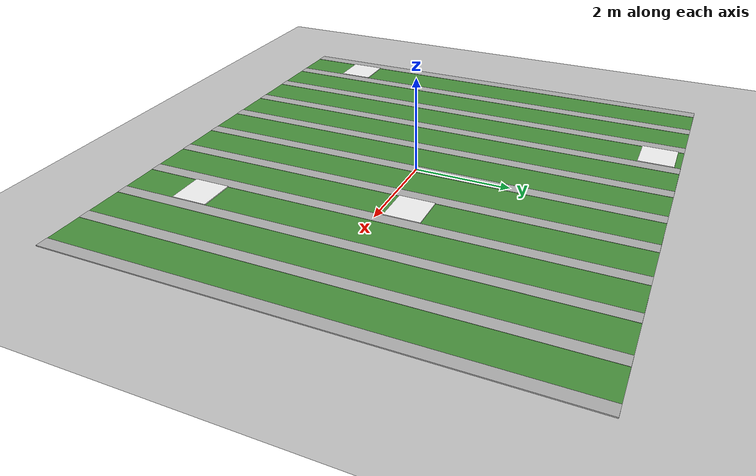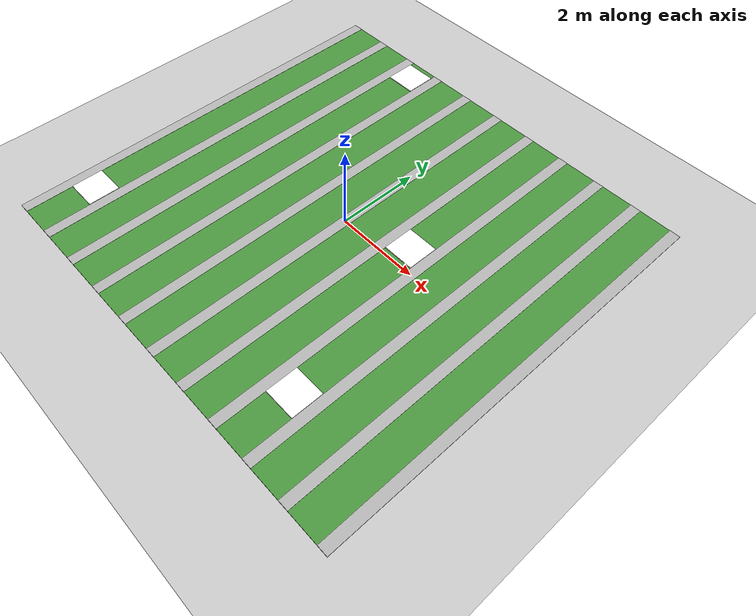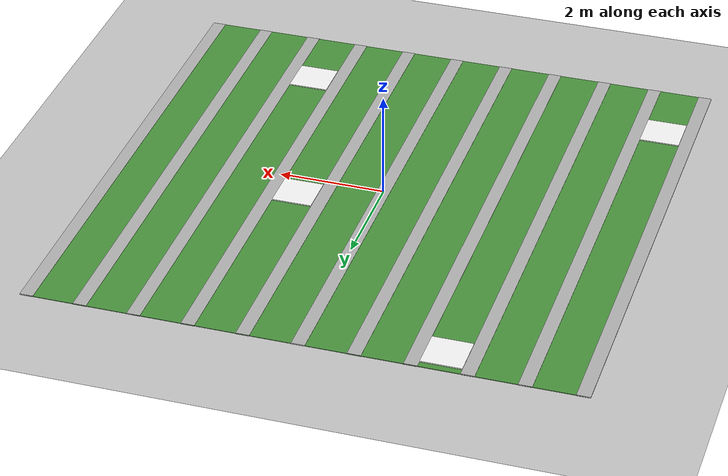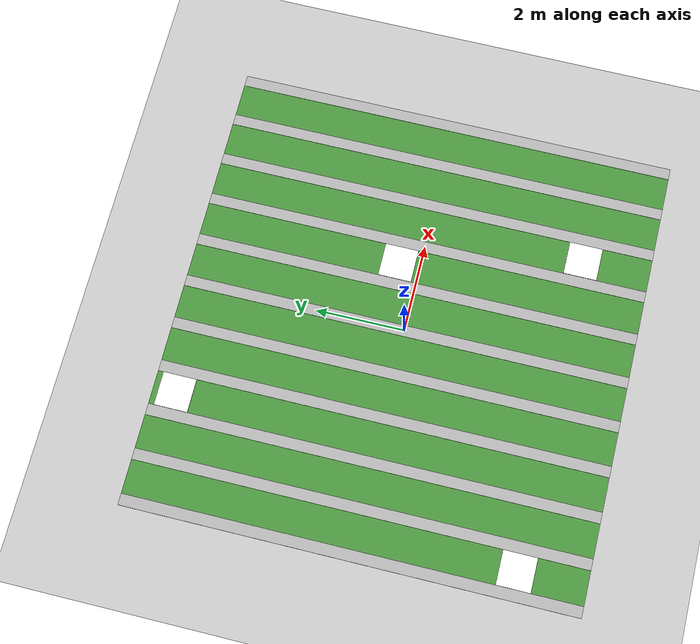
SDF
<sdf version="1.5">
 <world name="default">
  <include><uri>model://sun</uri></include>
  <include><uri>model://ground_plane</uri></include>
  <model name="target1">
   <static>true</static>
   <pose>1.5 0.5 0 0 0 0</pose>
   <link name="link">
    <visual name="visual">
     <cast_shadows>false</cast_shadows>
     <geometry><box><size>0.75 0.75 0.05</size></box></geometry>
     <material><emissive>1 1 1 1</emissive><diffuse>1 1 1 1</diffuse></material>
     <plugin name="visualChange1" filename="libChangeTargetVisual.so">
      <contains_topic>target1_contains/contain</contains_topic>
     </plugin>
    </visual>
   </link>
  </model>
  <model name="target2">
   <static>true</static>
   <pose>-2.5 4.5 0 0 0 0</pose>
   <link name="link">
    <visual name="visual">
     <cast_shadows>false</cast_shadows>
     <geometry><box><size>0.75 0.75 0.05</size></box></geometry>
     <material><emissive>1 1 1 1</emissive><diffuse>1 1 1 1</diffuse></material>
     <plugin name="visualChange2" filename="libChangeTargetVisual.so">
      <contains_topic>target2_contains/contain</contains_topic>
     </plugin>
    </visual>
   </link>
  </model>
  <model name="target3">
   <static>true</static>
   <pose>2.5 -3.5 0 0 0 0</pose>
   <link name="link">
    <visual name="visual">
     <cast_shadows>false</cast_shadows>
     <geometry><box><size>0.75 0.75 0.05</size></box></geometry>
     <material><emissive>1 1 1 1</emissive><diffuse>1 1 1 1</diffuse></material>
     <plugin name="visualChange3" filename="libChangeTargetVisual.so">
      <contains_topic>target3_contains/contain</contains_topic>
     </plugin>
    </visual>
   </link>
  </model>
  <model name="target4">
   <static>true</static>
   <pose>-4.5 -3.5 0 0 0 0</pose>
   <link name="link">
    <visual name="visual">
     <cast_shadows>false</cast_shadows>
     <geometry><box><size>0.75 0.75 0.05</size></box></geometry>
     <material><emissive>1 1 1 1</emissive><diffuse>1 1 1 1</diffuse></material>
     <plugin name="visualChange4" filename="libChangeTargetVisual.so">
      <contains_topic>target4_contains/contain</contains_topic>
     </plugin>
    </visual>
   </link>
  </model>
  <physics name="default_physics" default="0" type="ode">
   <gravity>0 0 -9.8066</gravity>
   <ode>
    <solver>
     <type>quick</type>
     <iters>10</iters>
     <sor>1.3</sor>
     <use_dynamic_moi_rescaling>0</use_dynamic_moi_rescaling>
    </solver>
    <constraints>
     <cfm>0</cfm>
     <erp>0.2</erp>
     <contact_max_correcting_vel>100</contact_max_correcting_vel>
     <contact_surface_layer>0.001</contact_surface_layer>
    </constraints>
   </ode>
   <max_step_size>0.004</max_step_size>
   <real_time_factor>1</real_time_factor>
   <real_time_update_rate>250</real_time_update_rate>
   <magnetic_field>6.0e-6 2.3e-5 -4.2e-5</magnetic_field>
  </physics>
  <plugin name="target1Plugin" filename="libContainPlugin.so">
   <enabled>true</enabled>
   <entity>iris::base_link</entity>
   <namespace>target1_contains</namespace>
   <pose>1.5 0.5 0 0 0 0</pose>
   <geometry><box><size>1 1 10</size></box></geometry>
  </plugin>
  <plugin name="target2Plugin" filename="libContainPlugin.so">
   <enabled>true</enabled>
   <entity>iris::base_link</entity>
   <namespace>target2_contains</namespace>
   <pose>-2.5 4.5 0 0 0 0</pose>
   <geometry><box><size>1 1 10</size></box></geometry>
  </plugin>
  <plugin name="target3Plugin" filename="libContainPlugin.so">
   <enabled>true</enabled>
   <entity>iris::base_link</entity>
   <namespace>target3_contains</namespace>
   <pose>2.5 -3.5 0 0 0 0</pose>
   <geometry><box><size>1 1 10</size></box></geometry>
  </plugin>
  <plugin name="target4Plugin" filename="libContainPlugin.so">
   <enabled>true</enabled>
   <entity>iris::base_link</entity>
   <namespace>target4_contains</namespace>
   <pose>-4.5 -3.5 0 0 0 0</pose>
   <geometry><box><size>1 1 10</size></box></geometry>
  </plugin>
  <model name="grass">
   <static>true</static>
   <link name="link">
    <visual name="visual">
     <geometry><box><size>10 10 0.01</size></box></geometry>
     <material>
      <script><uri>file://media/materials/scripts/gazebo.material</uri><name>Gazebo/Grass</name></script>
     </material>
    </visual>
   </link>
  </model>
  <model name="road_y1">
   <static>1</static>
   <pose>0 0 0 0 0 1.5708</pose>
   <link name="link">
    <visual name="visual">
     <cast_shadows>0</cast_shadows>
     <geometry><box><size>10 0.25 0.02</size></box></geometry>
     <material>
      <script><uri>file://media/materials/scripts/gazebo.material</uri><name>Gazebo/Motorway</name></script>
     </material>
    </visual>
   </link>
  </model>
  <model name="road_y2">
   <static>1</static>
   <pose>1 0 0 0 0 1.5708</pose>
   <link name="link">
    <visual name="visual">
     <cast_shadows>0</cast_shadows>
     <geometry><box><size>10 0.25 0.02</size></box></geometry>
     <material>
      <script><uri>file://media/materials/scripts/gazebo.material</uri><name>Gazebo/Motorway</name></script>
     </material>
    </visual>
   </link>
  </model>
  <model name="road_y3">
   <static>1</static>
   <pose>2 0 0 0 0 1.5708</pose>
   <link name="link">
    <visual name="visual">
     <cast_shadows>0</cast_shadows>
     <geometry><box><size>10 0.25 0.02</size></box></geometry>
     <material>
      <script><uri>file://media/materials/scripts/gazebo.material</uri><name>Gazebo/Motorway</name></script>
     </material>
    </visual>
   </link>
  </model>
  <model name="road_y4">
   <static>1</static>
   <pose>3 0 0 0 0 1.5708</pose>
   <link name="link">
    <visual name="visual">
     <cast_shadows>0</cast_shadows>
     <geometry><box><size>10 0.25 0.02</size></box></geometry>
     <material>
      <script><uri>file://media/materials/scripts/gazebo.material</uri><name>Gazebo/Motorway</name></script>
     </material>
    </visual>
   </link>
  </model>
  <model name="road_y5">
   <static>1</static>
   <pose>4 0 0 0 0 1.5708</pose>
   <link name="link">
    <visual name="visual">
     <cast_shadows>0</cast_shadows>
     <geometry><box><size>10 0.25 0.02</size></box></geometry>
     <material>
      <script><uri>file://media/materials/scripts/gazebo.material</uri><name>Gazebo/Motorway</name></script>
     </material>
    </visual>
   </link>
  </model>
  <model name="road_y6">
   <static>1</static>
   <pose>5 0 0 0 0 1.5708</pose>
   <link name="link">
    <visual name="visual">
     <cast_shadows>0</cast_shadows>
     <geometry><box><size>10 0.25 0.02</size></box></geometry>
     <material>
      <script><uri>file://media/materials/scripts/gazebo.material</uri><name>Gazebo/Motorway</name></script>
     </material>
    </visual>
   </link>
  </model>
  <model name="road_y_-2">
   <static>1</static>
   <pose>-1 0  0 0 0 1.5708</pose>
   <link name="link">
    <visual name="visual">
     <cast_shadows>0</cast_shadows>
     <geometry><box><size>10 0.25 0.02</size></box></geometry>
     <material>
      <script><uri>file://media/materials/scripts/gazebo.material</uri><name>Gazebo/Motorway</name></script>
     </material>
    </visual>
   </link>
  </model>
  <model name="road_y_-3">
   <static>1</static>
   <pose>-2 0  0 0 0 1.5708</pose>
   <link name="link">
    <visual name="visual">
     <cast_shadows>0</cast_shadows>
     <geometry><box><size>10 0.25 0.02</size></box></geometry>
     <material>
      <script><uri>file://media/materials/scripts/gazebo.material</uri><name>Gazebo/Motorway</name></script>
     </material>
    </visual>
   </link>
  </model>
  <model name="road_y_-4">
   <static>1</static>
   <pose>-3 0  0 0 0 1.5708</pose>
   <link name="link">
    <visual name="visual">
     <cast_shadows>0</cast_shadows>
     <geometry><box><size>10 0.25 0.02</size></box></geometry>
     <material>
      <script><uri>file://media/materials/scripts/gazebo.material</uri><name>Gazebo/Motorway</name></script>
     </material>
    </visual>
   </link>
  </model>
  <model name="road_y_-5">
   <static>1</static>
   <pose>-4 0  0 0 0 1.5708</pose>
   <link name="link">
    <visual name="visual">
     <cast_shadows>0</cast_shadows>
     <geometry><box><size>10 0.25 0.02</size></box></geometry>
     <material>
      <script><uri>file://media/materials/scripts/gazebo.material</uri><name>Gazebo/Motorway</name></script>
     </material>
    </visual>
   </link>
  </model>
  <model name="road_y_-6">
   <static>1</static>
   <pose>-5 0  0 0 0 1.5708</pose>
   <link name="link">
    <visual name="visual">
     <cast_shadows>0</cast_shadows>
     <geometry><box><size>10 0.25 0.02</size></box></geometry>
     <material>
      <script><uri>file://media/materials/scripts/gazebo.material</uri><name>Gazebo/Motorway</name></script>
     </material>
    </visual>
   </link>
  </model>
 </world>
</sdf>
